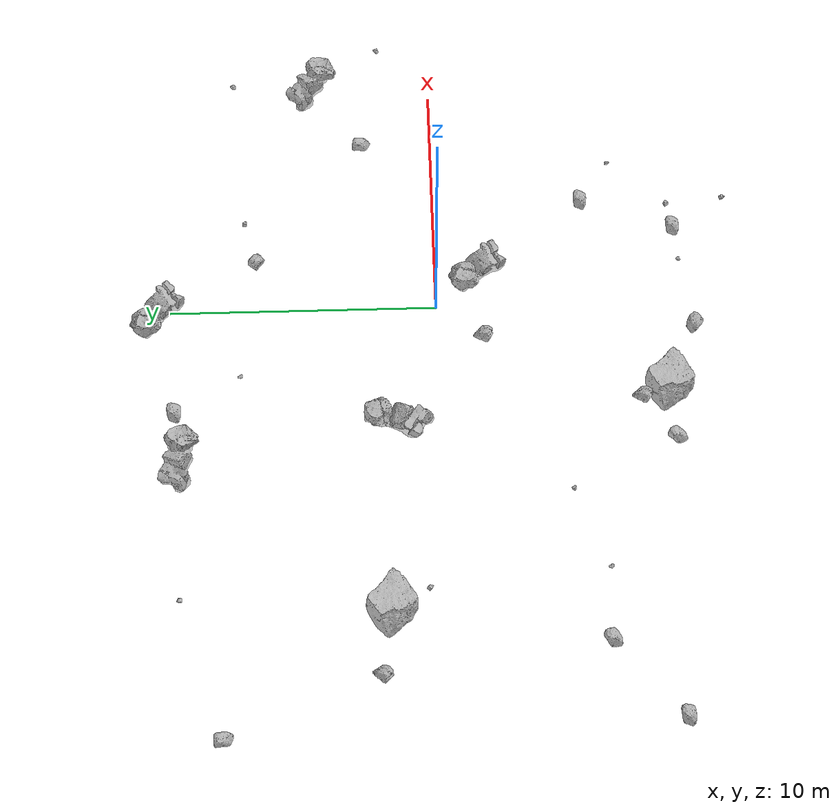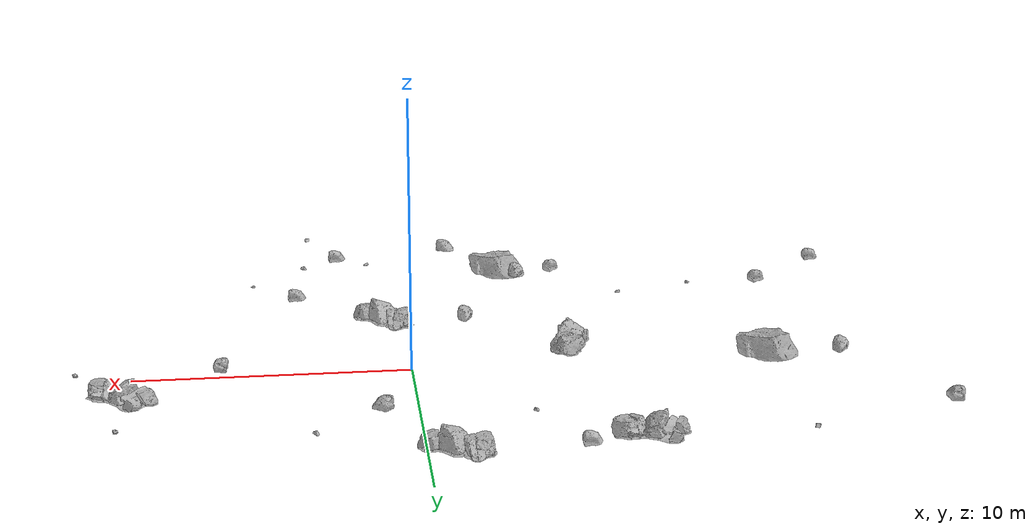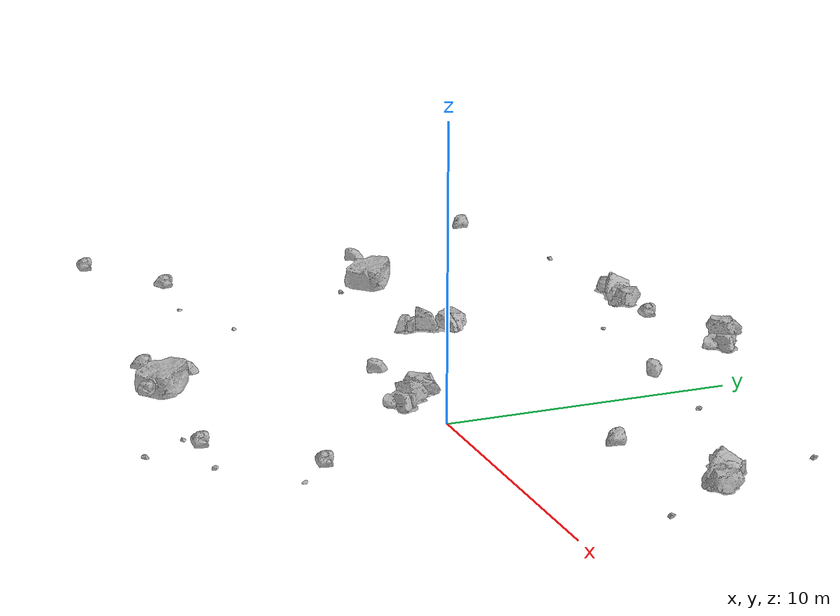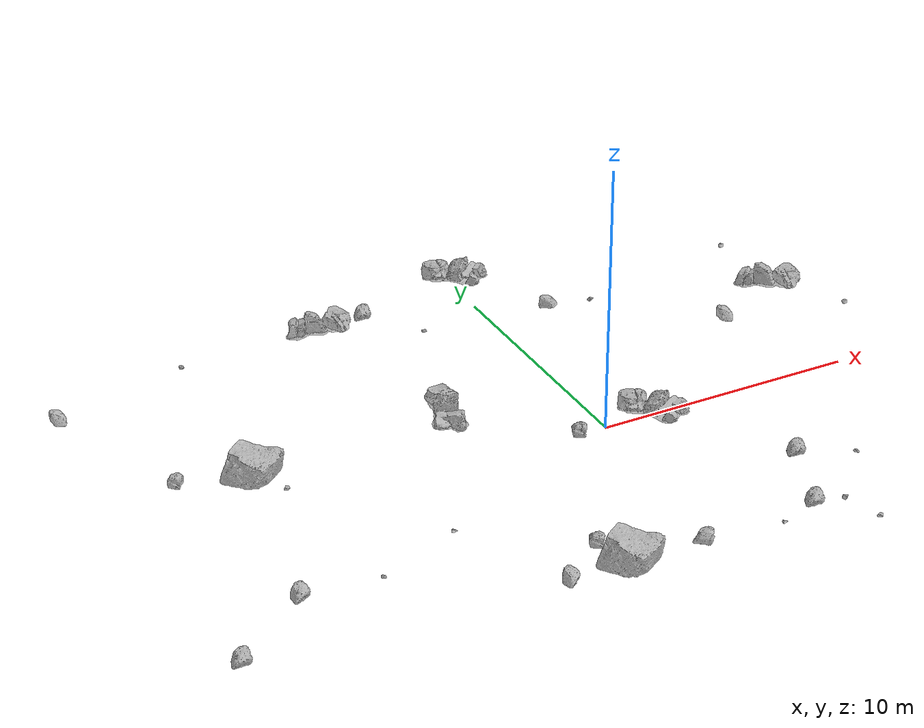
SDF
<sdf version="1.7">
 <world name="marsyard">
  <gravity>0 0 -9.81</gravity>
  <physics name="dart_physics" type="ignored">
   <max_step_size>0.003</max_step_size>
   <real_time_update_rate>333</real_time_update_rate>
   <real_time_factor>1.0</real_time_factor>
  </physics>
  <plugin filename="ignition-gazebo-physics-system" name="ignition::gazebo::systems::Physics"/>
  <plugin filename="ignition-gazebo-user-commands-system" name="ignition::gazebo::systems::UserCommands"/>
  <plugin filename="ignition-gazebo-scene-broadcaster-system" name="ignition::gazebo::systems::SceneBroadcaster"/>
  <plugin filename="ignition-gazebo-contact-system" name="ignition::gazebo::systems::Contact"/>
  <scene>
   <ambient>0.95 0.95 0.95 1</ambient>
   <background>0.70 0.70 0.70 1</background>
   <shadows>false</shadows>
  </scene>
  <light type="directional" name="sun">
   <cast_shadows>false</cast_shadows>
   <pose>0 0 30 0 0 0</pose>
   <diffuse>1 1 1 1</diffuse>
   <specular>0.15 0.15 0.15 1</specular>
   <direction>-0.35 0.1 -0.93</direction>
  </light>
  <model name="Rock_2">
   <static>true</static>
   <pose>6.6320 2.7249 1.3626 0.0000 0.0000 2.4803</pose>
   <link name="link">
    <visual name="visual">
     <geometry><mesh><uri>package://rock_generator/rocks_ws/rock_3/meshes/rock_3.stl</uri></mesh></geometry>
    </visual>
    <collision name="collision">
     <geometry><mesh><uri>package://rock_generator/rocks_ws/rock_3/meshes/rock_3.stl</uri></mesh></geometry>
    </collision>
   </link>
  </model>
  <model name="Rock_4">
   <static>true</static>
   <pose>-0.7935 10.3601 1.3397 0.0000 0.0000 -0.5690</pose>
   <link name="link">
    <visual name="visual">
     <geometry><mesh><uri>package://rock_generator/rocks_ws/rock_2/meshes/rock_2.stl</uri></mesh></geometry>
    </visual>
    <collision name="collision">
     <geometry><mesh><uri>package://rock_generator/rocks_ws/rock_2/meshes/rock_2.stl</uri></mesh></geometry>
    </collision>
   </link>
  </model>
  <model name="Rock_10">
   <static>true</static>
   <pose>3.8021 -8.8901 1.1790 0.0000 0.0000 1.0564</pose>
   <link name="link">
    <visual name="visual">
     <geometry><mesh><uri>package://rock_generator/rocks_ws/rock_9/meshes/rock_9.stl</uri></mesh></geometry>
    </visual>
    <collision name="collision">
     <geometry><mesh><uri>package://rock_generator/rocks_ws/rock_9/meshes/rock_9.stl</uri></mesh></geometry>
    </collision>
   </link>
  </model>
  <model name="Rock_11">
   <static>true</static>
   <pose>-3.5379 7.2147 1.2574 0.0000 0.0000 1.7292</pose>
   <link name="link">
    <visual name="visual">
     <geometry><mesh><uri>package://rock_generator/rocks_ws/rock_7/meshes/rock_7.stl</uri></mesh></geometry>
    </visual>
    <collision name="collision">
     <geometry><mesh><uri>package://rock_generator/rocks_ws/rock_7/meshes/rock_7.stl</uri></mesh></geometry>
    </collision>
   </link>
  </model>
  <model name="Rock_12">
   <static>true</static>
   <pose>-6.3095 -8.4560 0.8928 0.0000 0.0000 1.7633</pose>
   <link name="link">
    <visual name="visual">
     <geometry><mesh><uri>package://rock_generator/rocks_ws/rock_3/meshes/rock_3.stl</uri></mesh></geometry>
    </visual>
   </link>
  </model>
  <model name="Rock_13">
   <static>true</static>
   <pose>-14.1828 -5.5317 1.0766 0.0000 0.0000 1.4852</pose>
   <link name="link">
    <visual name="visual">
     <geometry><mesh><uri>package://rock_generator/rocks_ws/rock_3/meshes/rock_3.stl</uri></mesh></geometry>
    </visual>
    <collision name="collision">
     <geometry><mesh><uri>package://rock_generator/rocks_ws/rock_3/meshes/rock_3.stl</uri></mesh></geometry>
    </collision>
   </link>
  </model>
  <model name="Rock_14">
   <static>true</static>
   <pose>5.7814 -6.7648 1.1722 0.0000 0.0000 -1.6384</pose>
   <link name="link">
    <visual name="visual">
     <geometry><mesh><uri>package://rock_generator/rocks_ws/rock_7/meshes/rock_7.stl</uri></mesh></geometry>
    </visual>
   </link>
  </model>
  <model name="Rock_17">
   <static>true</static>
   <pose>-3.9064 -8.2845 0.7616 0.0000 0.0000 -1.8148</pose>
   <link name="link">
    <visual name="visual">
     <geometry><mesh><uri>package://rock_generator/rocks_ws/rock_1/meshes/rock_1.stl</uri></mesh></geometry>
    </visual>
    <collision name="collision">
     <geometry><mesh><uri>package://rock_generator/rocks_ws/rock_1/meshes/rock_1.stl</uri></mesh></geometry>
    </collision>
   </link>
  </model>
  <model name="Rock_19">
   <static>true</static>
   <pose>-17.4757 7.5213 1.1130 0.0000 0.0000 2.6453</pose>
   <link name="link">
    <visual name="visual">
     <geometry><mesh><uri>package://rock_generator/rocks_ws/rock_3/meshes/rock_3.stl</uri></mesh></geometry>
    </visual>
    <collision name="collision">
     <geometry><mesh><uri>package://rock_generator/rocks_ws/rock_3/meshes/rock_3.stl</uri></mesh></geometry>
    </collision>
   </link>
  </model>
  <model name="Rock_20">
   <static>true</static>
   <pose>2.4503 -8.9367 1.4216 0.0000 0.0000 1.0010</pose>
   <link name="link">
    <visual name="visual">
     <geometry><mesh><uri>package://rock_generator/rocks_ws/rock_3/meshes/rock_3.stl</uri></mesh></geometry>
    </visual>
    <collision name="collision">
     <geometry><mesh><uri>package://rock_generator/rocks_ws/rock_3/meshes/rock_3.stl</uri></mesh></geometry>
    </collision>
   </link>
  </model>
  <model name="Rock_21">
   <static>true</static>
   <pose>1.2425 -9.1427 1.1652 0.0000 0.0000 -0.2921</pose>
   <link name="link">
    <visual name="visual">
     <geometry><mesh><uri>package://rock_generator/rocks_ws/rock_7/meshes/rock_7.stl</uri></mesh></geometry>
    </visual>
    <collision name="collision">
     <geometry><mesh><uri>package://rock_generator/rocks_ws/rock_7/meshes/rock_7.stl</uri></mesh></geometry>
    </collision>
   </link>
  </model>
  <model name="Rock_22">
   <static>true</static>
   <pose>-12.3147 9.1640 1.0805 0.0000 0.0000 -1.4822</pose>
   <link name="link">
    <visual name="visual">
     <geometry><mesh><uri>package://rock_generator/rocks_ws/rock_9/meshes/rock_9.stl</uri></mesh></geometry>
    </visual>
    <collision name="collision">
     <geometry><mesh><uri>package://rock_generator/rocks_ws/rock_9/meshes/rock_9.stl</uri></mesh></geometry>
    </collision>
   </link>
  </model>
  <model name="Rock_25">
   <static>true</static>
   <pose>3.6231 -10.9462 1.7550 0.0000 0.0000 -0.6721</pose>
   <link name="link">
    <visual name="visual">
     <geometry><mesh><uri>package://rock_generator/rocks_ws/rock_9/meshes/rock_9.stl</uri></mesh></geometry>
    </visual>
    <collision name="collision">
     <geometry><mesh><uri>package://rock_generator/rocks_ws/rock_9/meshes/rock_9.stl</uri></mesh></geometry>
    </collision>
   </link>
  </model>
  <model name="Rock_26">
   <static>true</static>
   <pose>-4.6345 -7.3234 1.0908 0.0000 0.0000 -1.0789</pose>
   <link name="link">
    <visual name="visual">
     <geometry><mesh><uri>package://rock_generator/rocks_ws/rock_3/meshes/rock_3.stl</uri></mesh></geometry>
    </visual>
   </link>
  </model>
  <model name="Rock_30">
   <static>true</static>
   <pose>4.0889 -5.5800 0.9364 0.0000 0.0000 0.9553</pose>
   <link name="link">
    <visual name="visual">
     <geometry><mesh><uri>package://rock_generator/rocks_ws/rock_3/meshes/rock_3.stl</uri></mesh></geometry>
    </visual>
   </link>
  </model>
  <model name="Rock_31">
   <static>true</static>
   <pose>9.7498 7.7381 1.3588 0.0000 0.0000 2.2560</pose>
   <link name="link">
    <visual name="visual">
     <geometry><mesh><uri>package://rock_generator/rocks_ws/rock_9/meshes/rock_9.stl</uri></mesh></geometry>
    </visual>
    <collision name="collision">
     <geometry><mesh><uri>package://rock_generator/rocks_ws/rock_9/meshes/rock_9.stl</uri></mesh></geometry>
    </collision>
   </link>
  </model>
  <model name="Rock_32">
   <static>true</static>
   <pose>-11.9335 0.5607 0.8291 0.0000 0.0000 -0.2364</pose>
   <link name="link">
    <visual name="visual">
     <geometry><mesh><uri>package://rock_generator/rocks_ws/rock_9/meshes/rock_9.stl</uri></mesh></geometry>
    </visual>
    <collision name="collision">
     <geometry><mesh><uri>package://rock_generator/rocks_ws/rock_9/meshes/rock_9.stl</uri></mesh></geometry>
    </collision>
   </link>
  </model>
  <model name="Rock_34">
   <static>true</static>
   <pose>-12.4890 1.9831 0.6704 0.0000 0.0000 -1.6950</pose>
   <link name="link">
    <visual name="visual">
     <geometry><mesh><uri>package://rock_generator/rocks_ws/rock_1/meshes/rock_1.stl</uri></mesh></geometry>
    </visual>
    <collision name="collision">
     <geometry><mesh><uri>package://rock_generator/rocks_ws/rock_1/meshes/rock_1.stl</uri></mesh></geometry>
    </collision>
   </link>
  </model>
  <model name="Rock_36">
   <static>true</static>
   <pose>3.5365 7.2198 0.7899 0.0000 0.0000 0.6467</pose>
   <link name="link">
    <visual name="visual">
     <geometry><mesh><uri>package://rock_generator/rocks_ws/rock_9/meshes/rock_9.stl</uri></mesh></geometry>
    </visual>
    <collision name="collision">
     <geometry><mesh><uri>package://rock_generator/rocks_ws/rock_9/meshes/rock_9.stl</uri></mesh></geometry>
    </collision>
   </link>
  </model>
  <model name="Rock_42">
   <static>true</static>
   <pose>-11.3830 -5.7227 1.0427 0.0000 0.0000 1.4830</pose>
   <link name="link">
    <visual name="visual">
     <geometry><mesh><uri>package://rock_generator/rocks_ws/rock_7/meshes/rock_7.stl</uri></mesh></geometry>
    </visual>
    <collision name="collision">
     <geometry><mesh><uri>package://rock_generator/rocks_ws/rock_7/meshes/rock_7.stl</uri></mesh></geometry>
    </collision>
   </link>
  </model>
  <model name="Rock_44">
   <static>true</static>
   <pose>0.8274 -1.5196 1.3577 0.0000 0.0000 -0.8056</pose>
   <link name="link">
    <visual name="visual">
     <geometry><mesh><uri>package://rock_generator/rocks_ws/rock_2/meshes/rock_2.stl</uri></mesh></geometry>
    </visual>
    <collision name="collision">
     <geometry><mesh><uri>package://rock_generator/rocks_ws/rock_2/meshes/rock_2.stl</uri></mesh></geometry>
    </collision>
   </link>
  </model>
  <model name="Rock_45">
   <static>true</static>
   <pose>-15.1474 2.2331 0.9663 0.0000 0.0000 -1.2475</pose>
   <link name="link">
    <visual name="visual">
     <geometry><mesh><uri>package://rock_generator/rocks_ws/rock_3/meshes/rock_3.stl</uri></mesh></geometry>
    </visual>
    <collision name="collision">
     <geometry><mesh><uri>package://rock_generator/rocks_ws/rock_3/meshes/rock_3.stl</uri></mesh></geometry>
    </collision>
   </link>
  </model>
  <model name="Rock_46">
   <static>true</static>
   <pose>-1.9877 -9.3440 1.5878 0.0000 0.0000 0.3431</pose>
   <link name="link">
    <visual name="visual">
     <geometry><mesh><uri>package://rock_generator/rocks_ws/rock_3/meshes/rock_3.stl</uri></mesh></geometry>
    </visual>
   </link>
  </model>
  <model name="Rock_49">
   <static>true</static>
   <pose>-17.0343 -7.7942 1.1732 0.0000 0.0000 1.0551</pose>
   <link name="link">
    <visual name="visual">
     <geometry><mesh><uri>package://rock_generator/rocks_ws/rock_3/meshes/rock_3.stl</uri></mesh></geometry>
    </visual>
    <collision name="collision">
     <geometry><mesh><uri>package://rock_generator/rocks_ws/rock_3/meshes/rock_3.stl</uri></mesh></geometry>
    </collision>
   </link>
  </model>
  <model name="Rock_51">
   <static>true</static>
   <pose>-2.0390 -1.6623 1.3080 0.0000 0.0000 -0.9540</pose>
   <link name="link">
    <visual name="visual">
     <geometry><mesh><uri>package://rock_generator/rocks_ws/rock_3/meshes/rock_3.stl</uri></mesh></geometry>
    </visual>
   </link>
  </model>
  <model name="Rock_52">
   <static>true</static>
   <pose>-4.9799 9.6265 1.0157 0.0000 0.0000 1.0359</pose>
   <link name="link">
    <visual name="visual">
     <geometry><mesh><uri>package://rock_generator/rocks_ws/rock_3/meshes/rock_3.stl</uri></mesh></geometry>
    </visual>
    <collision name="collision">
     <geometry><mesh><uri>package://rock_generator/rocks_ws/rock_3/meshes/rock_3.stl</uri></mesh></geometry>
    </collision>
   </link>
  </model>
  <model name="Rock_54">
   <static>true</static>
   <pose>-6.7952 9.3623 1.1401 0.0000 0.0000 3.0012</pose>
   <link name="link">
    <visual name="visual">
     <geometry><mesh><uri>package://rock_generator/rocks_ws/rock_2/meshes/rock_2.stl</uri></mesh></geometry>
    </visual>
    <collision name="collision">
     <geometry><mesh><uri>package://rock_generator/rocks_ws/rock_2/meshes/rock_2.stl</uri></mesh></geometry>
    </collision>
   </link>
  </model>
  <model name="Rock_56">
   <static>true</static>
   <pose>-8.3712 -4.6142 1.1368 0.0000 0.0000 -0.6316</pose>
   <link name="link">
    <visual name="visual">
     <geometry><mesh><uri>package://rock_generator/rocks_ws/rock_7/meshes/rock_7.stl</uri></mesh></geometry>
    </visual>
    <collision name="collision">
     <geometry><mesh><uri>package://rock_generator/rocks_ws/rock_7/meshes/rock_7.stl</uri></mesh></geometry>
    </collision>
   </link>
  </model>
  <model name="Rock_59">
   <static>true</static>
   <pose>9.9418 4.6493 1.1816 0.0000 0.0000 2.5811</pose>
   <link name="link">
    <visual name="visual">
     <geometry><mesh><uri>package://rock_generator/rocks_ws/rock_2/meshes/rock_2.stl</uri></mesh></geometry>
    </visual>
   </link>
  </model>
  <model name="Rock_60">
   <static>true</static>
   <pose>11.6434 2.0798 1.1179 0.0000 0.0000 2.1456</pose>
   <link name="link">
    <visual name="visual">
     <geometry><mesh><uri>package://rock_generator/rocks_ws/rock_9/meshes/rock_9.stl</uri></mesh></geometry>
    </visual>
    <collision name="collision">
     <geometry><mesh><uri>package://rock_generator/rocks_ws/rock_9/meshes/rock_9.stl</uri></mesh></geometry>
    </collision>
   </link>
  </model>
  <model name="Rock_61">
   <static>true</static>
   <pose>-5.4848 1.6277 1.3411 0.0000 0.0000 -1.8218</pose>
   <link name="link">
    <visual name="visual">
     <geometry><mesh><uri>package://rock_generator/rocks_ws/rock_2/meshes/rock_2.stl</uri></mesh></geometry>
    </visual>
    <collision name="collision">
     <geometry><mesh><uri>package://rock_generator/rocks_ws/rock_2/meshes/rock_2.stl</uri></mesh></geometry>
    </collision>
   </link>
  </model>
  <model name="Rock_63">
   <static>true</static>
   <pose>1.3612 6.6528 1.2972 0.0000 0.0000 -2.7430</pose>
   <link name="link">
    <visual name="visual">
     <geometry><mesh><uri>package://rock_generator/rocks_ws/rock_3/meshes/rock_3.stl</uri></mesh></geometry>
    </visual>
    <collision name="collision">
     <geometry><mesh><uri>package://rock_generator/rocks_ws/rock_3/meshes/rock_3.stl</uri></mesh></geometry>
    </collision>
   </link>
  </model>
 </world>
</sdf>
